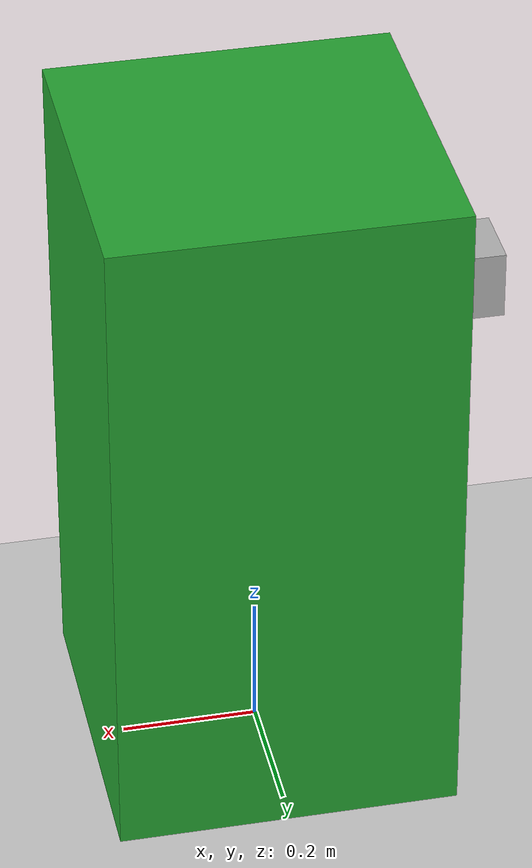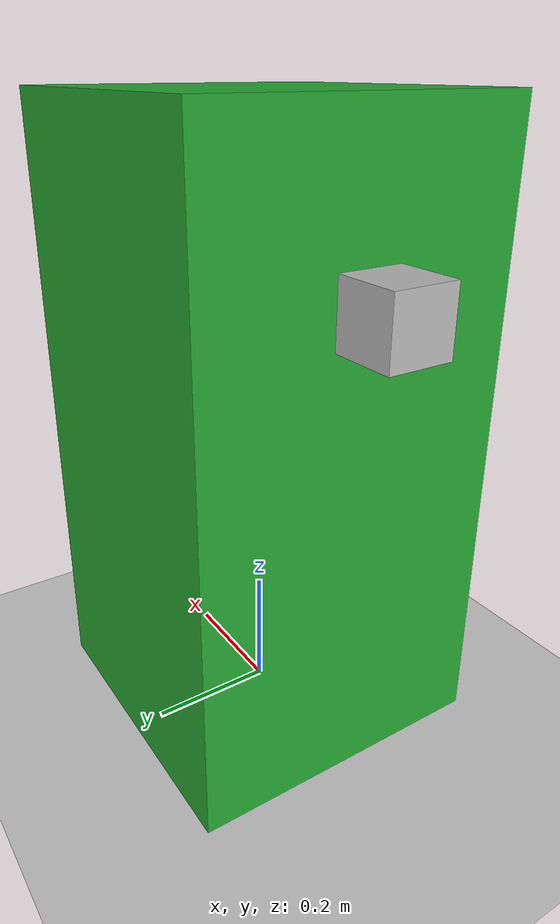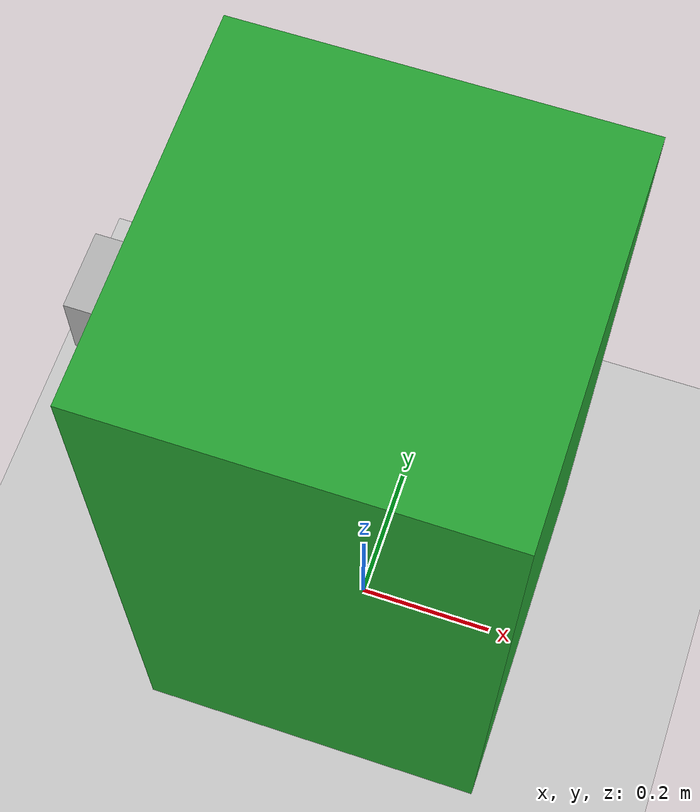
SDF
<?xml version="1.0"?>
<sdf version="1.4">
  <world name="default">

    <include>
      <uri>model://sun</uri>
    </include>
    <include>
      <uri>model://ground_plane</uri>
    </include>

    <!-- CUSTOM Ground Plane -->
    <model name="custom_ground_plane_box">
      <link name="base_link">
        <pose>0 0 0.5 0 0 0</pose>
        <inertial>

          <mass>100</mass>
          <inertia>
            <ixx>3.33341666667e+3</ixx>
            <ixy>0.0</ixy>
            <ixz>0.0</ixz>
            <iyy>3.33341666667e+3</iyy>
            <iyz>0.0</iyz>
            <izz>6.66666666667e+3</izz>
          </inertia>
        </inertial>

        <collision name="collision">
          <geometry>
            <box>
              <size>0.5 0.5 1.0</size>
            </box>
          </geometry>
          <surface>
              <friction>
                <ode>
                  <mu>0</mu>
                  <mu2>0</mu2>
                </ode>
              </friction>
            </surface>
        </collision>

        <visual name="visual">
          <geometry>
            <box>
              <size>0.5 0.5 1.0</size>
            </box>
          </geometry>
          <material>
              <script>
                <uri>file://media/materials/scripts/gazebo.material</uri>
                <name>Gazebo/Green</name>
              </script>
            </material>
        </visual>
      </link>

      <!-- making IMU link -->
      <link name="imu_link">
        <pose>-0.3 0 0.75 0 0 0</pose>

        <visual name="imu_visual">
          <geometry>
            <box>
              <size>0.1 0.1 0.1</size>
            </box>
          </geometry>
        </visual>
        <collision name="imu_collision">
         <geometry>
          <box>
            <size> 0.1 0.1 0.1 </size>
          </box>
        </geometry>
        </collision>
      </link>

      <joint type="fixed" name="imu_joint">
          <child> imu_link </child>
          <parent> base_link </parent>

      </joint>

      <plugin name="motion_model" filename="libplannar_mover_plugin.so"/>
      <plugin name="gps_controller" filename="libhector_gazebo_ros_gps.so">
        <alwayson>true</alwayson>
        <updaterate>1.0</updaterate>
        <bodyname>base_link</bodyname>
        <topicname>/fix</topicname>
        <velocitytopicname>/fix_velocity</velocitytopicname>
        <drift>5.0 5.0 5.0</drift>
        <gaussiannoise>0.1 0.1 0.1</gaussiannoise>
        <velocitydrift>0 0 0</velocitydrift>
        <velocitygaussiannoise>0.1 0.1 0.1</velocitygaussiannoise>
      </plugin>

      <plugin name="imu_plugin" filename="libhector_gazebo_ros_imu.so">
        <alwaysOn>true</alwaysOn>
        <bodyName>imu_link</bodyName>
        <topicName>/spatial/imu</topicName>
        <serviceName>imu_service</serviceName>
        <gaussianNoise>0.0</gaussianNoise>
        <updateRate>20.0</updateRate>
      </plugin>

    </model>
  </world>
</sdf>
